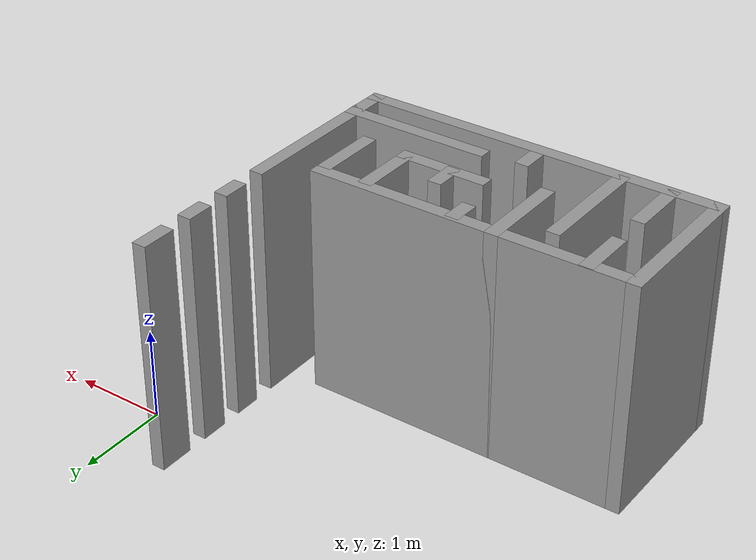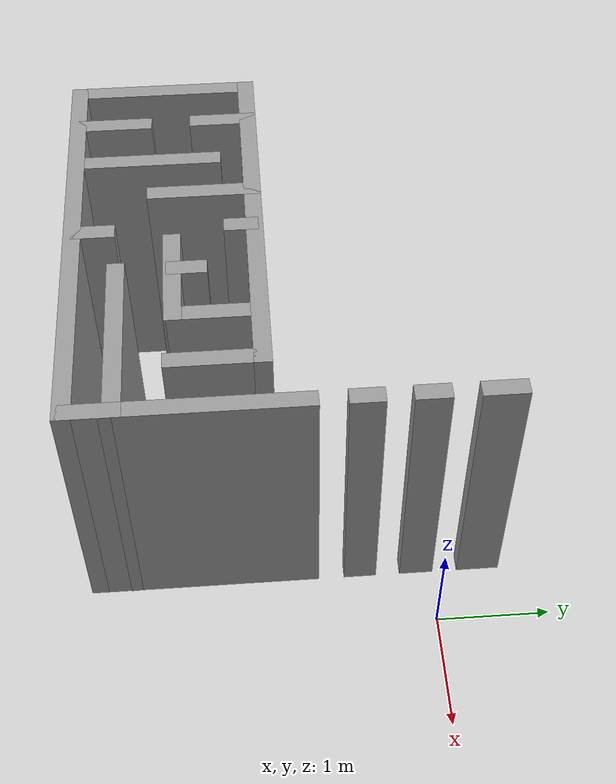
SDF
<?xml version='1.0'?>
<sdf version='1.6'>
  <model name='FinalMaze'>
    <pose frame=''>-2.50308 -1.2165 0 0 -0 0</pose>
    <link name='Wall_11'>
      <collision name='Wall_11_Collision'>
        <geometry>
          <box>
            <size>1.71 0.15 2.5</size>
          </box>
        </geometry>
        <pose frame=''>0 0 1.25 0 -0 0</pose>
      </collision>
      <visual name='Wall_11_Visual'>
        <pose frame=''>0 0 1.25 0 -0 0</pose>
        <geometry>
          <box>
            <size>1.71 0.15 2.5</size>
          </box>
        </geometry>
        <material>
          <script>
            <uri>file://media/materials/scripts/gazebo.material</uri>
            <name>Gazebo/Grey</name>
          </script>
          <ambient>1 1 1 1</ambient>
        </material>
        <meta>
          <layer>0</layer>
        </meta>
      </visual>
      <pose frame=''>-1.93692 -0.9835 0 0 -0 1.5708</pose>
    </link>
    <link name='Wall_12'>
      <collision name='Wall_12_Collision'>
        <geometry>
          <box>
            <size>3.55 0.15 2.5</size>
          </box>
        </geometry>
        <pose frame=''>0 0 1.25 0 -0 0</pose>
      </collision>
      <visual name='Wall_12_Visual'>
        <pose frame=''>0 0 1.25 0 -0 0</pose>
        <geometry>
          <box>
            <size>3.55 0.15 2.5</size>
          </box>
        </geometry>
        <material>
          <script>
            <uri>file://media/materials/scripts/gazebo.material</uri>
            <name>Gazebo/Grey</name>
          </script>
          <ambient>1 1 1 1</ambient>
        </material>
        <meta>
          <layer>0</layer>
        </meta>
      </visual>
      <pose frame=''>-0.236918 -0.2035 0 0 -0 0</pose>
    </link>
    <link name='Wall_16'>
      <collision name='Wall_16_Collision'>
        <geometry>
          <box>
            <size>0.6 0.15 2.5</size>
          </box>
        </geometry>
        <pose frame=''>0 0 1.25 0 -0 0</pose>
      </collision>
      <visual name='Wall_16_Visual'>
        <pose frame=''>0 0 1.25 0 -0 0</pose>
        <geometry>
          <box>
            <size>0.6 0.15 2.5</size>
          </box>
        </geometry>
        <material>
          <script>
            <uri>file://media/materials/scripts/gazebo.material</uri>
            <name>Gazebo/Grey</name>
          </script>
          <ambient>1 1 1 1</ambient>
        </material>
        <meta>
          <layer>0</layer>
        </meta>
      </visual>
      <pose frame=''>-1.46692 -0.4385 0 0 -0 -1.5708</pose>
    </link>
    <link name='Wall_18'>
      <collision name='Wall_18_Collision'>
        <geometry>
          <box>
            <size>0.7 0.15 2.5</size>
          </box>
        </geometry>
        <pose frame=''>0 0 1.25 0 -0 0</pose>
      </collision>
      <visual name='Wall_18_Visual'>
        <pose frame=''>0 0 1.25 0 -0 0</pose>
        <geometry>
          <box>
            <size>0.7 0.15 2.5</size>
          </box>
        </geometry>
        <material>
          <script>
            <uri>file://media/materials/scripts/gazebo.material</uri>
            <name>Gazebo/Grey</name>
          </script>
          <ambient>1 1 1 1</ambient>
        </material>
        <meta>
          <layer>0</layer>
        </meta>
      </visual>
      <pose frame=''>-1.45692 -1.4385 0 0 -0 1.5708</pose>
    </link>
    <link name='Wall_20'>
      <collision name='Wall_20_Collision'>
        <geometry>
          <box>
            <size>1.3 0.15 2.5</size>
          </box>
        </geometry>
        <pose frame=''>0 0 1.25 0 -0 0</pose>
      </collision>
      <visual name='Wall_20_Visual'>
        <pose frame=''>0 0 1.25 0 -0 0</pose>
        <geometry>
          <box>
            <size>1.3 0.15 2.5</size>
          </box>
        </geometry>
        <material>
          <script>
            <uri>file://media/materials/scripts/gazebo.material</uri>
            <name>Gazebo/Grey</name>
          </script>
          <ambient>1 1 1 1</ambient>
        </material>
        <meta>
          <layer>0</layer>
        </meta>
      </visual>
      <pose frame=''>-0.936918 -1.1185 0 0 -0 1.5708</pose>
    </link>
    <link name='Wall_22'>
      <collision name='Wall_22_Collision'>
        <geometry>
          <box>
            <size>1 0.15 2.5</size>
          </box>
        </geometry>
        <pose frame=''>0 0 1.25 0 -0 0</pose>
      </collision>
      <visual name='Wall_22_Visual'>
        <pose frame=''>0 0 1.25 0 -0 0</pose>
        <geometry>
          <box>
            <size>1 0.15 2.5</size>
          </box>
        </geometry>
        <material>
          <script>
            <uri>file://media/materials/scripts/gazebo.material</uri>
            <name>Gazebo/Grey</name>
          </script>
          <ambient>1 1 1 1</ambient>
        </material>
        <meta>
          <layer>0</layer>
        </meta>
      </visual>
      <pose frame=''>-0.496918 -0.6285 0 0 -0 -1.5708</pose>
    </link>
    <link name='Wall_24'>
      <collision name='Wall_24_Collision'>
        <geometry>
          <box>
            <size>0.3 0.15 2.5</size>
          </box>
        </geometry>
        <pose frame=''>0 0 1.25 0 -0 0</pose>
      </collision>
      <visual name='Wall_24_Visual'>
        <pose frame=''>0 0 1.25 0 -0 0</pose>
        <geometry>
          <box>
            <size>0.3 0.15 2.5</size>
          </box>
        </geometry>
        <material>
          <script>
            <uri>file://media/materials/scripts/gazebo.material</uri>
            <name>Gazebo/Grey</name>
          </script>
          <ambient>1 1 1 1</ambient>
        </material>
        <meta>
          <layer>0</layer>
        </meta>
      </visual>
      <pose frame=''>-0.046918 -0.3185 0 0 -0 -1.5708</pose>
    </link>
    <link name='Wall_3'>
      <collision name='Wall_3_Collision'>
        <geometry>
          <box>
            <size>4.019 0.15 2.5</size>
          </box>
        </geometry>
        <pose frame=''>0 0 1.25 0 -0 0</pose>
      </collision>
      <visual name='Wall_3_Visual'>
        <pose frame=''>0 0 1.25 0 -0 0</pose>
        <geometry>
          <box>
            <size>4.019 0.15 2.5</size>
          </box>
        </geometry>
        <material>
          <script>
            <uri>file://media/materials/scripts/gazebo.material</uri>
            <name>Gazebo/Grey</name>
          </script>
          <ambient>1 1 1 1</ambient>
        </material>
        <meta>
          <layer>0</layer>
        </meta>
      </visual>
      <pose frame=''>-0.002418 -1.7635 0 0 -0 0</pose>
    </link>
    <link name='Wall_32'>
      <collision name='Wall_32_Collision'>
        <geometry>
          <box>
            <size>1 0.15 2.5</size>
          </box>
        </geometry>
        <pose frame=''>0 0 1.25 0 -0 0</pose>
      </collision>
      <visual name='Wall_32_Visual'>
        <pose frame=''>0 0 1.25 0 -0 0</pose>
        <geometry>
          <box>
            <size>1 0.15 2.5</size>
          </box>
        </geometry>
        <material>
          <script>
            <uri>file://media/materials/scripts/gazebo.material</uri>
            <name>Gazebo/Grey</name>
          </script>
          <ambient>1 1 1 1</ambient>
        </material>
        <meta>
          <layer>0</layer>
        </meta>
      </visual>
      <pose frame=''>0.538082 -0.9135 0 0 -0 0</pose>
    </link>
    <link name='Wall_34'>
      <collision name='Wall_34_Collision'>
        <geometry>
          <box>
            <size>0.35 0.15 2.5</size>
          </box>
        </geometry>
        <pose frame=''>0 0 1.25 0 -0 0</pose>
      </collision>
      <visual name='Wall_34_Visual'>
        <pose frame=''>0 0 1.25 0 -0 0</pose>
        <geometry>
          <box>
            <size>0.35 0.15 2.5</size>
          </box>
        </geometry>
        <material>
          <script>
            <uri>file://media/materials/scripts/gazebo.material</uri>
            <name>Gazebo/Grey</name>
          </script>
          <ambient>1 1 1 1</ambient>
        </material>
        <meta>
          <layer>0</layer>
        </meta>
      </visual>
      <pose frame=''>0.443082 -0.7935 0 0 -0 1.5708</pose>
    </link>
    <link name='Wall_36'>
      <collision name='Wall_36_Collision'>
        <geometry>
          <box>
            <size>0.75 0.15 2.5</size>
          </box>
        </geometry>
        <pose frame=''>0 0 1.25 0 -0 0</pose>
      </collision>
      <visual name='Wall_36_Visual'>
        <pose frame=''>0 0 1.25 0 -0 0</pose>
        <geometry>
          <box>
            <size>0.75 0.15 2.5</size>
          </box>
        </geometry>
        <material>
          <script>
            <uri>file://media/materials/scripts/gazebo.material</uri>
            <name>Gazebo/Grey</name>
          </script>
          <ambient>1 1 1 1</ambient>
        </material>
        <meta>
          <layer>0</layer>
        </meta>
      </visual>
      <pose frame=''>0.963082 -0.5935 0 0 -0 1.5708</pose>
    </link>
    <link name='Wall_38'>
      <collision name='Wall_38_Collision'>
        <geometry>
          <box>
            <size>0.75 0.15 2.5</size>
          </box>
        </geometry>
        <pose frame=''>0 0 1.25 0 -0 0</pose>
      </collision>
      <visual name='Wall_38_Visual'>
        <pose frame=''>0 0 1.25 0 -0 0</pose>
        <geometry>
          <box>
            <size>0.75 0.15 2.5</size>
          </box>
        </geometry>
        <material>
          <script>
            <uri>file://media/materials/scripts/gazebo.material</uri>
            <name>Gazebo/Grey</name>
          </script>
          <ambient>1 1 1 1</ambient>
        </material>
        <meta>
          <layer>0</layer>
        </meta>
      </visual>
      <pose frame=''>1.46308 -0.6235 0 0 -0 -1.5708</pose>
    </link>
    <link name='Wall_40'>
      <collision name='Wall_40_Collision'>
        <geometry>
          <box>
            <size>0.4 0.15 2.5</size>
          </box>
        </geometry>
        <pose frame=''>0 0 1.25 0 -0 0</pose>
      </collision>
      <visual name='Wall_40_Visual'>
        <pose frame=''>0 0 1.25 0 -0 0</pose>
        <geometry>
          <box>
            <size>0.4 0.15 2.5</size>
          </box>
        </geometry>
        <material>
          <script>
            <uri>file://media/materials/scripts/gazebo.material</uri>
            <name>Gazebo/Grey</name>
          </script>
          <ambient>1 1 1 1</ambient>
        </material>
        <meta>
          <layer>0</layer>
        </meta>
      </visual>
      <pose frame=''>-0.036918 -1.5985 0 0 -0 1.5708</pose>
    </link>
    <link name='Wall_57'>
      <collision name='Wall_57_Collision'>
        <geometry>
          <box>
            <size>0.289 0.15 2.5</size>
          </box>
        </geometry>
        <pose frame=''>0 0 1.25 0 -0 0</pose>
      </collision>
      <visual name='Wall_57_Visual'>
        <pose frame=''>0 0 1.25 0 -0 0</pose>
        <geometry>
          <box>
            <size>0.289 0.15 2.5</size>
          </box>
        </geometry>
        <material>
          <script>
            <uri>file://media/materials/scripts/gazebo.material</uri>
            <name>Gazebo/Grey</name>
          </script>
          <ambient>1 1 1 1</ambient>
        </material>
        <meta>
          <layer>0</layer>
        </meta>
      </visual>
      <pose frame=''>1.93208 0.576 0 0 -0 -1.5708</pose>
    </link>
    <link name='Wall_59'>
      <collision name='Wall_59_Collision'>
        <geometry>
          <box>
            <size>0.3 0.15 2.5</size>
          </box>
        </geometry>
        <pose frame=''>0 0 1.25 0 -0 0</pose>
      </collision>
      <visual name='Wall_59_Visual'>
        <pose frame=''>0 0 1.25 0 -0 0</pose>
        <geometry>
          <box>
            <size>0.3 0.15 2.5</size>
          </box>
        </geometry>
        <material>
          <script>
            <uri>file://media/materials/scripts/gazebo.material</uri>
            <name>Gazebo/Grey</name>
          </script>
          <ambient>1 1 1 1</ambient>
        </material>
        <meta>
          <layer>0</layer>
        </meta>
      </visual>
      <pose frame=''>1.93208 1.0865 0 0 -0 1.5708</pose>
    </link>
    <link name='Wall_62'>
      <collision name='Wall_62_Collision'>
        <geometry>
          <box>
            <size>0.38 0.15 2.5</size>
          </box>
        </geometry>
        <pose frame=''>0 0 1.25 0 -0 0</pose>
      </collision>
      <visual name='Wall_62_Visual'>
        <pose frame=''>0 0 1.25 0 -0 0</pose>
        <geometry>
          <box>
            <size>0.38 0.15 2.5</size>
          </box>
        </geometry>
        <material>
          <script>
            <uri>file://media/materials/scripts/gazebo.material</uri>
            <name>Gazebo/Grey</name>
          </script>
          <ambient>1 1 1 1</ambient>
        </material>
        <meta>
          <layer>0</layer>
        </meta>
      </visual>
      <pose frame=''>1.93208 1.6485 0 0 -0 1.5708</pose>
    </link>
    <link name='Wall_64'>
      <collision name='Wall_64_Collision'>
        <geometry>
          <box>
            <size>1.661 0.15 2.5</size>
          </box>
        </geometry>
        <pose frame=''>0 0 1.25 0 -0 0</pose>
      </collision>
      <visual name='Wall_64_Visual'>
        <pose frame=''>0 0 1.25 0 -0 0</pose>
        <geometry>
          <box>
            <size>1.661 0.15 2.5</size>
          </box>
        </geometry>
        <material>
          <script>
            <uri>file://media/materials/scripts/gazebo.material</uri>
            <name>Gazebo/Grey</name>
          </script>
          <ambient>1 1 1 1</ambient>
        </material>
        <meta>
          <layer>0</layer>
        </meta>
      </visual>
      <pose frame=''>1.93208 -0.628 0 0 -0 1.5708</pose>
    </link>
    <link name='Wall_66'>
      <collision name='Wall_66_Collision'>
        <geometry>
          <box>
            <size>0.53 0.15 2.5</size>
          </box>
        </geometry>
        <pose frame=''>0 0 1.25 0 -0 0</pose>
      </collision>
      <visual name='Wall_66_Visual'>
        <pose frame=''>0 0 1.25 0 -0 0</pose>
        <geometry>
          <box>
            <size>0.53 0.15 2.5</size>
          </box>
        </geometry>
        <material>
          <script>
            <uri>file://media/materials/scripts/gazebo.material</uri>
            <name>Gazebo/Grey</name>
          </script>
          <ambient>1 1 1 1</ambient>
        </material>
        <meta>
          <layer>0</layer>
        </meta>
      </visual>
      <pose frame=''>1.93208 -1.5735 0 0 -0 -1.5708</pose>
    </link>
    <link name='Wall_70'>
      <collision name='Wall_70_Collision'>
        <geometry>
          <box>
            <size>0.180903 0.15 2.5</size>
          </box>
        </geometry>
        <pose frame=''>0 0 1.25 0 -0 0</pose>
      </collision>
      <visual name='Wall_70_Visual'>
        <pose frame=''>0 0 1.25 0 -0 0</pose>
        <geometry>
          <box>
            <size>0.180903 0.15 2.5</size>
          </box>
        </geometry>
        <material>
          <script>
            <uri>file://media/materials/scripts/gazebo.material</uri>
            <name>Gazebo/Grey</name>
          </script>
          <ambient>1 1 1 1</ambient>
        </material>
        <meta>
          <layer>0</layer>
        </meta>
      </visual>
      <pose frame=''>1.9328 -1.39894 0 0 -0 -1.52435</pose>
    </link>
    <link name='Wall_72'>
      <collision name='Wall_72_Collision'>
        <geometry>
          <box>
            <size>1.65 0.15 2.5</size>
          </box>
        </geometry>
        <pose frame=''>0 0 1.25 0 -0 0</pose>
      </collision>
      <visual name='Wall_72_Visual'>
        <pose frame=''>0 0 1.25 0 -0 0</pose>
        <geometry>
          <box>
            <size>1.65 0.15 2.5</size>
          </box>
        </geometry>
        <material>
          <script>
            <uri>file://media/materials/scripts/gazebo.material</uri>
            <name>Gazebo/Grey</name>
          </script>
          <ambient>1 1 1 1</ambient>
        </material>
        <meta>
          <layer>0</layer>
        </meta>
      </visual>
      <pose frame=''>1.18208 -1.3835 0 0 -0 3.14159</pose>
    </link>
    <static>1</static>
  </model>
</sdf>
